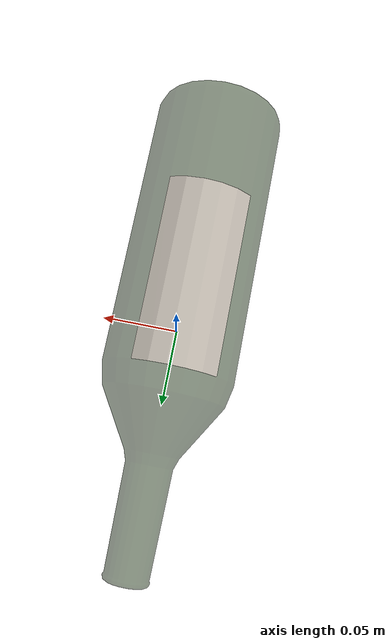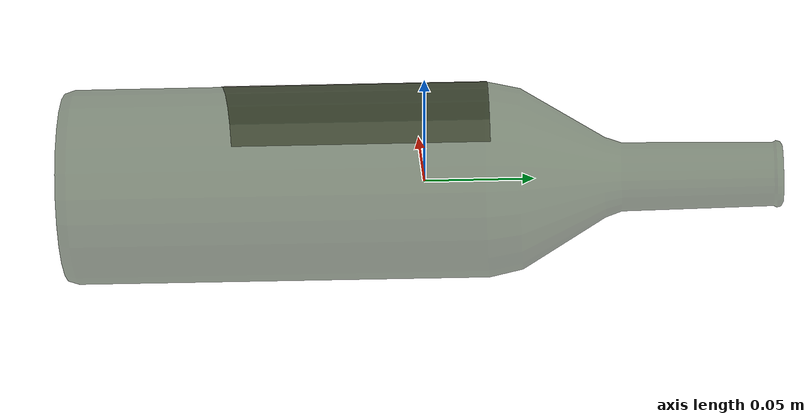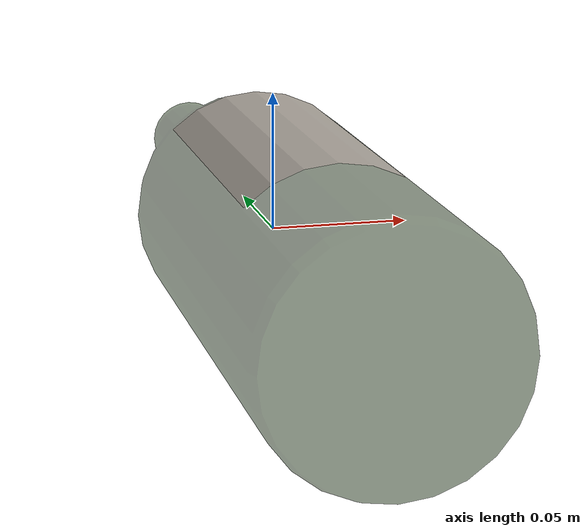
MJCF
<mujoco model="Wine_Bottle_1">
  <compiler autolimits="true" boundmass="0.01" angle="radian"/>
  <default>
    <default class="/">
      <default class="__VISUAL_MJT__">
        <geom contype="0" conaffinity="0" group="0"/>
      </default>
      <default class="__STRUCTURAL_MJT__">
        <geom contype="8" conaffinity="15" group="4" friction="0.90000000000000002 0.90000000000000002 0.001" solref="0.025000000000000001 1" solimp="0.998 0.998 0.001"/>
      </default>
      <default class="__DYNAMIC_MJT__">
        <geom contype="1" conaffinity="15" group="4" friction="0.90000000000000002 0.90000000000000002 0.001" solref="0.025000000000000001 1" solimp="0.998 0.998 0.001"/>
      </default>
    </default>
  </default>
  <asset>
    <texture name="Labels" type="2d" file="Labels.png"/>
    <material name="material_Labels" class="/" texture="Labels" specular="0.5" shininess="0.5" rgba="1 1 1 1"/>
    <material name="material_Glass_Detailed_Green_Mat" class="/" specular="0.5" shininess="0.5" rgba="0.042900609999999999 0.1323529 0 0.5"/>
    <mesh name="Wine_Bottle_1_wine_bottle_1_0" class="/" file="Wine_Bottle_1_wine_bottle_1/Wine_Bottle_1_wine_bottle_1_0.obj" scale="1 1 1"/>
    <mesh name="Wine_Bottle_1_wine_bottle_1_1" class="/" file="Wine_Bottle_1_wine_bottle_1/Wine_Bottle_1_wine_bottle_1_1.obj" scale="1 1 1"/>
  </asset>
  <worldbody>
    <body name="Wine_Bottle_1">
      <joint name="Wine_Bottle_1_free" class="/" type="free" pos="0 0 0" axis="0 0 1" stiffness="0" range="0 0" armature="0" damping="0.10000000000000001" frictionloss="0"/>
      <body name="Wine_Bottle_1_wine_bottle_1" pos="-0 -0.16289000000000001 0" quat="1 0 0 0">
        <geom name="Wine_Bottle_1_wine_bottle_1_0" class="__VISUAL_MJT__" type="mesh" material="material_Labels" shellinertia="false" mesh="Wine_Bottle_1_wine_bottle_1_0"/>
        <geom name="Wine_Bottle_1_wine_bottle_1_1" class="__VISUAL_MJT__" type="mesh" material="material_Glass_Detailed_Green_Mat" shellinertia="false" mesh="Wine_Bottle_1_wine_bottle_1_1"/>
        <geom name="Wine_Bottle_1_PrimitiveCollider_0" class="__DYNAMIC_MJT__" type="box" size="0.017917059361934662 0.10040634870529175 0.044093437492847443" rgba="0 1 0 1" pos="-0 0.10039997100830078 0" quat="1 0 0 0"/>
        <geom name="Wine_Bottle_1_PrimitiveCollider_1" class="__DYNAMIC_MJT__" type="box" size="0.017917059361934662 0.10040634870529175 0.044093500822782516" rgba="0 1 0 1" pos="-0 0.10039997100830078 0" quat="0.70710784196853638 0 0.70710575580596924 0"/>
        <geom name="Wine_Bottle_1_PrimitiveCollider_2" class="__DYNAMIC_MJT__" type="box" size="0.017917059361934662 0.10040634870529175 0.044093437492847443" rgba="0 1 0 1" pos="-0 0.10040000081062317 0" quat="0.92387980222702026 0 0.38268274068832397 0"/>
        <geom name="Wine_Bottle_1_PrimitiveCollider_3" class="__DYNAMIC_MJT__" type="box" size="0.017917059361934662 0.10040634870529175 0.044093500822782516" rgba="0 1 0 1" pos="-0 0.10039997100830078 0" quat="0.38268548250198364 0 0.92387866973876953 0"/>
        <geom name="Wine_Bottle_1_PrimitiveCollider_4" class="__DYNAMIC_MJT__" type="box" size="0.014803182333707809 0.013974661938846111 0.03643026202917099" rgba="0 1 0 1" pos="-0 0.21449995040893555 0" quat="1 0 0 0"/>
        <geom name="Wine_Bottle_1_PrimitiveCollider_5" class="__DYNAMIC_MJT__" type="box" size="0.014803182333707809 0.013974661938846111 0.036430399864912033" rgba="0 1 0 1" pos="-0 0.21449999511241913 0" quat="0.70710784196853638 0 0.70710575580596924 0"/>
        <geom name="Wine_Bottle_1_PrimitiveCollider_6" class="__DYNAMIC_MJT__" type="box" size="0.014803182333707809 0.013974661938846111 0.03643026202917099" rgba="0 1 0 1" pos="-0 0.21449995040893555 0" quat="0.92387980222702026 0 0.38268274068832397 0"/>
        <geom name="Wine_Bottle_1_PrimitiveCollider_7" class="__DYNAMIC_MJT__" type="box" size="0.014803182333707809 0.013974661938846111 0.036430399864912033" rgba="0 1 0 1" pos="-0 0.21449995040893555 0" quat="0.38268548250198364 0 0.92387866973876953 0"/>
        <geom name="Wine_Bottle_1_PrimitiveCollider_8" class="__DYNAMIC_MJT__" type="box" size="0.010001410730183125 0.008894631639122963 0.024613220244646072" rgba="0 1 0 1" pos="-0 0.23705153167247772 0" quat="1 0 0 0"/>
        <geom name="Wine_Bottle_1_PrimitiveCollider_9" class="__DYNAMIC_MJT__" type="box" size="0.010001410730183125 0.0088946344330906868 0.024613251909613609" rgba="0 1 0 1" pos="-0 0.23705153167247772 0" quat="0.70710784196853638 0 0.70710575580596924 0"/>
        <geom name="Wine_Bottle_1_PrimitiveCollider_10" class="__DYNAMIC_MJT__" type="box" size="0.010001410730183125 0.0088946297764778137 0.024613220244646072" rgba="0 1 0 1" pos="-0 0.23705160617828369 0" quat="0.92387980222702026 0 0.38268274068832397 0"/>
        <geom name="Wine_Bottle_1_PrimitiveCollider_11" class="__DYNAMIC_MJT__" type="box" size="0.010001410730183125 0.0088946344330906868 0.024613251909613609" rgba="0 1 0 1" pos="-0 0.23705153167247772 0" quat="0.38268548250198364 0 0.92387866973876953 0"/>
        <geom name="Wine_Bottle_1_PrimitiveCollider_12" class="__DYNAMIC_MJT__" type="box" size="0.0061757750809192657 0.040119655430316925 0.015198426321148872" rgba="0 1 0 1" pos="-0 0.28567180037498474 0" quat="1 0 0 0"/>
        <geom name="Wine_Bottle_1_PrimitiveCollider_13" class="__DYNAMIC_MJT__" type="box" size="0.0061757746152579784 0.04011964425444603 0.015198452398180962" rgba="0 1 0 1" pos="-0 0.28567180037498474 0" quat="0.70710784196853638 0 0.70710575580596924 0"/>
        <geom name="Wine_Bottle_1_PrimitiveCollider_14" class="__DYNAMIC_MJT__" type="box" size="0.0061757750809192657 0.040127124637365341 0.015198427252471447" rgba="0 1 0 1" pos="-0 0.28566434979438782 0" quat="0.92387980222702026 0 0.38268274068832397 0"/>
        <geom name="Wine_Bottle_1_PrimitiveCollider_15" class="__DYNAMIC_MJT__" type="box" size="0.0061757746152579784 0.040127076208591461 0.015198449604213238" rgba="0 1 0 1" pos="-0 0.28566440939903259 0" quat="0.38268548250198364 0 0.92387866973876953 0"/>
      </body>
    </body>
  </worldbody>
</mujoco>
